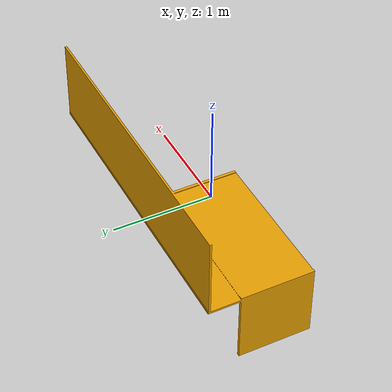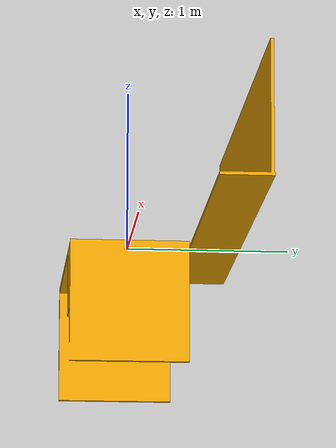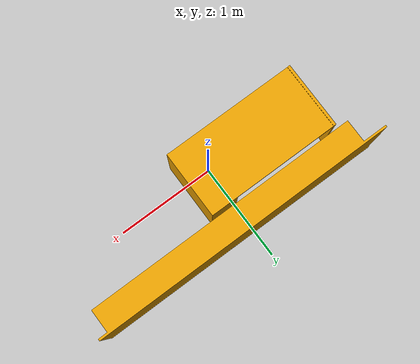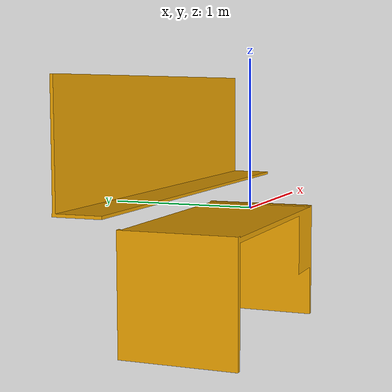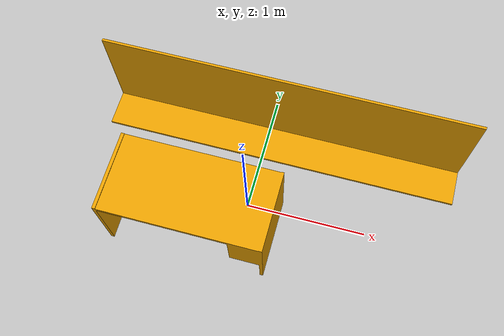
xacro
<?xml version="1.0"?>

<robot xmlns:xacro="http://ros.org/wiki/xacro" name="ur5_desk">
  <!-- Create the link of the hemisphere -->
  <link name="ur5_desk">
    <visual>
      <geometry>
        <mesh filename="./desk/desk.dae"/>
      </geometry>
    </visual>
    <collision>
      <geometry>
        <mesh filename="./desk/desk.stl" />
      </geometry>
    </collision>
  </link>
</robot>
